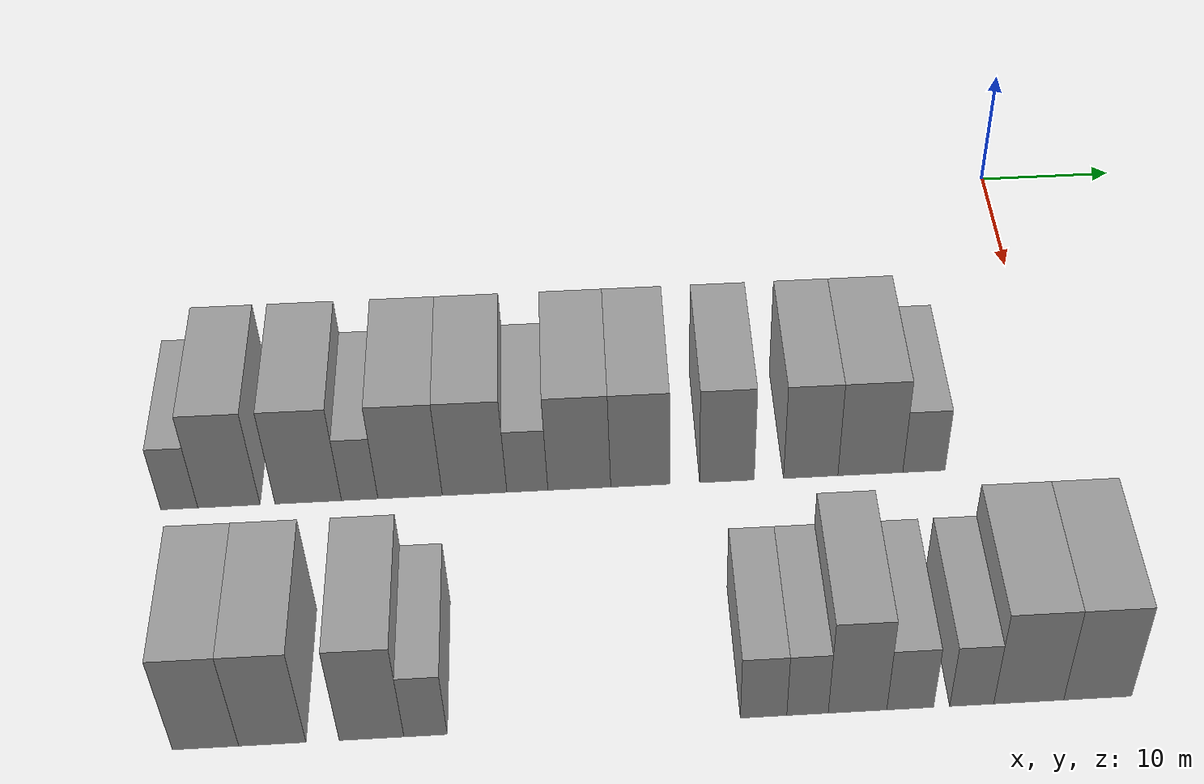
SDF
<sdf version="1.6">
 <world name="default">
  <model name="building_34">
   <static>1</static>
   <pose>25.0000 -59.5268 0 0.000000 0.000000 0.000000</pose>
   <link name="link">
    <pose>0 0 3.00 0 0 0</pose>
    <collision name="collision"><geometry><box><size>10.0000 2.4527 6.0000</size></box></geometry></collision>
    <visual name="visual">
     <cast_shadows>0</cast_shadows>
     <geometry><box><size>10.0000 2.4527 6.0000</size></box></geometry>
     <material>
      <script>
       <uri>model://grey_wall/materials/scripts</uri>
       <uri>model://grey_wall/materials/textures</uri>
       <name>vrc/grey_wall</name>
      </script>
     </material>
    </visual>
   </link>
  </model>
  <model name="building_35">
   <static>1</static>
   <pose>25.0000 -56.2302 0 0.000000 0.000000 0.000000</pose>
   <link name="link">
    <pose>0 0 4.50 0 0 0</pose>
    <collision name="collision"><geometry><box><size>10.0000 4.1403 9.0000</size></box></geometry></collision>
    <visual name="visual">
     <cast_shadows>0</cast_shadows>
     <geometry><box><size>10.0000 4.1403 9.0000</size></box></geometry>
     <material>
      <script>
       <uri>model://grey_wall/materials/scripts</uri>
       <uri>model://grey_wall/materials/textures</uri>
       <name>vrc/grey_wall</name>
      </script>
     </material>
    </visual>
   </link>
  </model>
  <model name="building_36">
   <static>1</static>
   <pose>25.0000 -50.9407 0 0.000000 0.000000 0.000000</pose>
   <link name="link">
    <pose>0 0 4.50 0 0 0</pose>
    <collision name="collision"><geometry><box><size>10.0000 4.4387 9.0000</size></box></geometry></collision>
    <visual name="visual">
     <cast_shadows>0</cast_shadows>
     <geometry><box><size>10.0000 4.4387 9.0000</size></box></geometry>
     <material>
      <script>
       <uri>model://grey_wall/materials/scripts</uri>
       <uri>model://grey_wall/materials/textures</uri>
       <name>vrc/grey_wall</name>
      </script>
     </material>
    </visual>
   </link>
  </model>
  <model name="building_37">
   <static>1</static>
   <pose>25.0000 -47.5016 0 0.000000 0.000000 0.000000</pose>
   <link name="link">
    <pose>0 0 3.00 0 0 0</pose>
    <collision name="collision"><geometry><box><size>10.0000 2.4396 6.0000</size></box></geometry></collision>
    <visual name="visual">
     <cast_shadows>0</cast_shadows>
     <geometry><box><size>10.0000 2.4396 6.0000</size></box></geometry>
     <material>
      <script>
       <uri>model://grey_wall/materials/scripts</uri>
       <uri>model://grey_wall/materials/textures</uri>
       <name>vrc/grey_wall</name>
      </script>
     </material>
    </visual>
   </link>
  </model>
  <model name="building_38">
   <static>1</static>
   <pose>25.0000 -44.1194 0 0.000000 0.000000 0.000000</pose>
   <link name="link">
    <pose>0 0 4.50 0 0 0</pose>
    <collision name="collision"><geometry><box><size>10.0000 4.3247 9.0000</size></box></geometry></collision>
    <visual name="visual">
     <cast_shadows>0</cast_shadows>
     <geometry><box><size>10.0000 4.3247 9.0000</size></box></geometry>
     <material>
      <script>
       <uri>model://grey_wall/materials/scripts</uri>
       <uri>model://grey_wall/materials/textures</uri>
       <name>vrc/grey_wall</name>
      </script>
     </material>
    </visual>
   </link>
  </model>
  <model name="building_39">
   <static>1</static>
   <pose>25.0000 -39.7856 0 0.000000 0.000000 0.000000</pose>
   <link name="link">
    <pose>0 0 4.50 0 0 0</pose>
    <collision name="collision"><geometry><box><size>10.0000 4.3429 9.0000</size></box></geometry></collision>
    <visual name="visual">
     <cast_shadows>0</cast_shadows>
     <geometry><box><size>10.0000 4.3429 9.0000</size></box></geometry>
     <material>
      <script>
       <uri>model://grey_wall/materials/scripts</uri>
       <uri>model://grey_wall/materials/textures</uri>
       <name>vrc/grey_wall</name>
      </script>
     </material>
    </visual>
   </link>
  </model>
  <model name="building_40">
   <static>1</static>
   <pose>25.0000 -36.2304 0 0.000000 0.000000 0.000000</pose>
   <link name="link">
    <pose>0 0 3.00 0 0 0</pose>
    <collision name="collision"><geometry><box><size>10.0000 2.7675 6.0000</size></box></geometry></collision>
    <visual name="visual">
     <cast_shadows>0</cast_shadows>
     <geometry><box><size>10.0000 2.7675 6.0000</size></box></geometry>
     <material>
      <script>
       <uri>model://grey_wall/materials/scripts</uri>
       <uri>model://grey_wall/materials/textures</uri>
       <name>vrc/grey_wall</name>
      </script>
     </material>
    </visual>
   </link>
  </model>
  <model name="building_41">
   <static>1</static>
   <pose>25.0000 -32.7204 0 0.000000 0.000000 0.000000</pose>
   <link name="link">
    <pose>0 0 4.50 0 0 0</pose>
    <collision name="collision"><geometry><box><size>10.0000 4.2525 9.0000</size></box></geometry></collision>
    <visual name="visual">
     <cast_shadows>0</cast_shadows>
     <geometry><box><size>10.0000 4.2525 9.0000</size></box></geometry>
     <material>
      <script>
       <uri>model://grey_wall/materials/scripts</uri>
       <uri>model://grey_wall/materials/textures</uri>
       <name>vrc/grey_wall</name>
      </script>
     </material>
    </visual>
   </link>
  </model>
  <model name="building_42">
   <static>1</static>
   <pose>25.0000 -28.5766 0 0.000000 0.000000 0.000000</pose>
   <link name="link">
    <pose>0 0 4.50 0 0 0</pose>
    <collision name="collision"><geometry><box><size>10.0000 4.0351 9.0000</size></box></geometry></collision>
    <visual name="visual">
     <cast_shadows>0</cast_shadows>
     <geometry><box><size>10.0000 4.0351 9.0000</size></box></geometry>
     <material>
      <script>
       <uri>model://grey_wall/materials/scripts</uri>
       <uri>model://grey_wall/materials/textures</uri>
       <name>vrc/grey_wall</name>
      </script>
     </material>
    </visual>
   </link>
  </model>
  <model name="building_43">
   <static>1</static>
   <pose>25.0000 -22.7029 0 0.000000 0.000000 0.000000</pose>
   <link name="link">
    <pose>0 0 4.50 0 0 0</pose>
    <collision name="collision"><geometry><box><size>10.0000 3.7123 9.0000</size></box></geometry></collision>
    <visual name="visual">
     <cast_shadows>0</cast_shadows>
     <geometry><box><size>10.0000 3.7123 9.0000</size></box></geometry>
     <material>
      <script>
       <uri>model://grey_wall/materials/scripts</uri>
       <uri>model://grey_wall/materials/textures</uri>
       <name>vrc/grey_wall</name>
      </script>
     </material>
    </visual>
   </link>
  </model>
  <model name="building_44">
   <static>1</static>
   <pose>25.0000 -16.9877 0 0.000000 0.000000 0.000000</pose>
   <link name="link">
    <pose>0 0 4.50 0 0 0</pose>
    <collision name="collision"><geometry><box><size>10.0000 3.7183 9.0000</size></box></geometry></collision>
    <visual name="visual">
     <cast_shadows>0</cast_shadows>
     <geometry><box><size>10.0000 3.7183 9.0000</size></box></geometry>
     <material>
      <script>
       <uri>model://grey_wall/materials/scripts</uri>
       <uri>model://grey_wall/materials/textures</uri>
       <name>vrc/grey_wall</name>
      </script>
     </material>
    </visual>
   </link>
  </model>
  <model name="building_45">
   <static>1</static>
   <pose>25.0000 -12.9024 0 0.000000 0.000000 0.000000</pose>
   <link name="link">
    <pose>0 0 4.50 0 0 0</pose>
    <collision name="collision"><geometry><box><size>10.0000 4.4522 9.0000</size></box></geometry></collision>
    <visual name="visual">
     <cast_shadows>0</cast_shadows>
     <geometry><box><size>10.0000 4.4522 9.0000</size></box></geometry>
     <material>
      <script>
       <uri>model://grey_wall/materials/scripts</uri>
       <uri>model://grey_wall/materials/textures</uri>
       <name>vrc/grey_wall</name>
      </script>
     </material>
    </visual>
   </link>
  </model>
  <model name="building_46">
   <static>1</static>
   <pose>25.0000 -9.2257 0 0.000000 0.000000 0.000000</pose>
   <link name="link">
    <pose>0 0 3.00 0 0 0</pose>
    <collision name="collision"><geometry><box><size>10.0000 2.9012 6.0000</size></box></geometry></collision>
    <visual name="visual">
     <cast_shadows>0</cast_shadows>
     <geometry><box><size>10.0000 2.9012 6.0000</size></box></geometry>
     <material>
      <script>
       <uri>model://grey_wall/materials/scripts</uri>
       <uri>model://grey_wall/materials/textures</uri>
       <name>vrc/grey_wall</name>
      </script>
     </material>
    </visual>
   </link>
  </model>
  <model name="building_131">
   <static>1</static>
   <pose>44.0000 -55.8236 0 0.000000 0.000000 0.000000</pose>
   <link name="link">
    <pose>0 0 4.50 0 0 0</pose>
    <collision name="collision"><geometry><box><size>10.0000 3.9638 9.0000</size></box></geometry></collision>
    <visual name="visual">
     <cast_shadows>0</cast_shadows>
     <geometry><box><size>10.0000 3.9638 9.0000</size></box></geometry>
     <material>
      <script>
       <uri>model://grey_wall/materials/scripts</uri>
       <uri>model://grey_wall/materials/textures</uri>
       <name>vrc/grey_wall</name>
      </script>
     </material>
    </visual>
   </link>
  </model>
  <model name="building_132">
   <static>1</static>
   <pose>44.0000 -51.8228 0 0.000000 0.000000 0.000000</pose>
   <link name="link">
    <pose>0 0 4.50 0 0 0</pose>
    <collision name="collision"><geometry><box><size>10.0000 4.0378 9.0000</size></box></geometry></collision>
    <visual name="visual">
     <cast_shadows>0</cast_shadows>
     <geometry><box><size>10.0000 4.0378 9.0000</size></box></geometry>
     <material>
      <script>
       <uri>model://grey_wall/materials/scripts</uri>
       <uri>model://grey_wall/materials/textures</uri>
       <name>vrc/grey_wall</name>
      </script>
     </material>
    </visual>
   </link>
  </model>
  <model name="building_133">
   <static>1</static>
   <pose>44.0000 -45.8541 0 0.000000 0.000000 0.000000</pose>
   <link name="link">
    <pose>0 0 4.50 0 0 0</pose>
    <collision name="collision"><geometry><box><size>10.0000 3.8995 9.0000</size></box></geometry></collision>
    <visual name="visual">
     <cast_shadows>0</cast_shadows>
     <geometry><box><size>10.0000 3.8995 9.0000</size></box></geometry>
     <material>
      <script>
       <uri>model://grey_wall/materials/scripts</uri>
       <uri>model://grey_wall/materials/textures</uri>
       <name>vrc/grey_wall</name>
      </script>
     </material>
    </visual>
   </link>
  </model>
  <model name="building_134">
   <static>1</static>
   <pose>44.0000 -42.5927 0 0.000000 0.000000 0.000000</pose>
   <link name="link">
    <pose>0 0 3.00 0 0 0</pose>
    <collision name="collision"><geometry><box><size>10.0000 2.6233 6.0000</size></box></geometry></collision>
    <visual name="visual">
     <cast_shadows>0</cast_shadows>
     <geometry><box><size>10.0000 2.6233 6.0000</size></box></geometry>
     <material>
      <script>
       <uri>model://grey_wall/materials/scripts</uri>
       <uri>model://grey_wall/materials/textures</uri>
       <name>vrc/grey_wall</name>
      </script>
     </material>
    </visual>
   </link>
  </model>
  <model name="building_135">
   <static>1</static>
   <pose>44.0000 -22.0076 0 0.000000 0.000000 0.000000</pose>
   <link name="link">
    <pose>0 0 3.00 0 0 0</pose>
    <collision name="collision"><geometry><box><size>10.0000 2.8490 6.0000</size></box></geometry></collision>
    <visual name="visual">
     <cast_shadows>0</cast_shadows>
     <geometry><box><size>10.0000 2.8490 6.0000</size></box></geometry>
     <material>
      <script>
       <uri>model://grey_wall/materials/scripts</uri>
       <uri>model://grey_wall/materials/textures</uri>
       <name>vrc/grey_wall</name>
      </script>
     </material>
    </visual>
   </link>
  </model>
  <model name="building_136">
   <static>1</static>
   <pose>44.0000 -19.3084 0 0.000000 0.000000 0.000000</pose>
   <link name="link">
    <pose>0 0 3.00 0 0 0</pose>
    <collision name="collision"><geometry><box><size>10.0000 2.5492 6.0000</size></box></geometry></collision>
    <visual name="visual">
     <cast_shadows>0</cast_shadows>
     <geometry><box><size>10.0000 2.5492 6.0000</size></box></geometry>
     <material>
      <script>
       <uri>model://grey_wall/materials/scripts</uri>
       <uri>model://grey_wall/materials/textures</uri>
       <name>vrc/grey_wall</name>
      </script>
     </material>
    </visual>
   </link>
  </model>
  <model name="building_137">
   <static>1</static>
   <pose>44.0000 -16.2273 0 0.000000 0.000000 0.000000</pose>
   <link name="link">
    <pose>0 0 4.50 0 0 0</pose>
    <collision name="collision"><geometry><box><size>10.0000 3.6131 9.0000</size></box></geometry></collision>
    <visual name="visual">
     <cast_shadows>0</cast_shadows>
     <geometry><box><size>10.0000 3.6131 9.0000</size></box></geometry>
     <material>
      <script>
       <uri>model://grey_wall/materials/scripts</uri>
       <uri>model://grey_wall/materials/textures</uri>
       <name>vrc/grey_wall</name>
      </script>
     </material>
    </visual>
   </link>
  </model>
  <model name="building_138">
   <static>1</static>
   <pose>44.0000 -12.9741 0 0.000000 0.000000 0.000000</pose>
   <link name="link">
    <pose>0 0 3.00 0 0 0</pose>
    <collision name="collision"><geometry><box><size>10.0000 2.8932 6.0000</size></box></geometry></collision>
    <visual name="visual">
     <cast_shadows>0</cast_shadows>
     <geometry><box><size>10.0000 2.8932 6.0000</size></box></geometry>
     <material>
      <script>
       <uri>model://grey_wall/materials/scripts</uri>
       <uri>model://grey_wall/materials/textures</uri>
       <name>vrc/grey_wall</name>
      </script>
     </material>
    </visual>
   </link>
  </model>
  <model name="building_139">
   <static>1</static>
   <pose>44.0000 -9.1654 0 0.000000 0.000000 0.000000</pose>
   <link name="link">
    <pose>0 0 3.00 0 0 0</pose>
    <collision name="collision"><geometry><box><size>10.0000 2.7242 6.0000</size></box></geometry></collision>
    <visual name="visual">
     <cast_shadows>0</cast_shadows>
     <geometry><box><size>10.0000 2.7242 6.0000</size></box></geometry>
     <material>
      <script>
       <uri>model://grey_wall/materials/scripts</uri>
       <uri>model://grey_wall/materials/textures</uri>
       <name>vrc/grey_wall</name>
      </script>
     </material>
    </visual>
   </link>
  </model>
  <model name="building_140">
   <static>1</static>
   <pose>44.0000 -5.6246 0 0.000000 0.000000 0.000000</pose>
   <link name="link">
    <pose>0 0 4.50 0 0 0</pose>
    <collision name="collision"><geometry><box><size>10.0000 4.3575 9.0000</size></box></geometry></collision>
    <visual name="visual">
     <cast_shadows>0</cast_shadows>
     <geometry><box><size>10.0000 4.3575 9.0000</size></box></geometry>
     <material>
      <script>
       <uri>model://grey_wall/materials/scripts</uri>
       <uri>model://grey_wall/materials/textures</uri>
       <name>vrc/grey_wall</name>
      </script>
     </material>
    </visual>
   </link>
  </model>
  <model name="building_141">
   <static>1</static>
   <pose>44.0000 -1.3273 0 0.000000 0.000000 0.000000</pose>
   <link name="link">
    <pose>0 0 4.50 0 0 0</pose>
    <collision name="collision"><geometry><box><size>10.0000 4.2371 9.0000</size></box></geometry></collision>
    <visual name="visual">
     <cast_shadows>0</cast_shadows>
     <geometry><box><size>10.0000 4.2371 9.0000</size></box></geometry>
     <material>
      <script>
       <uri>model://grey_wall/materials/scripts</uri>
       <uri>model://grey_wall/materials/textures</uri>
       <name>vrc/grey_wall</name>
      </script>
     </material>
    </visual>
   </link>
  </model>
 </world>
</sdf>
